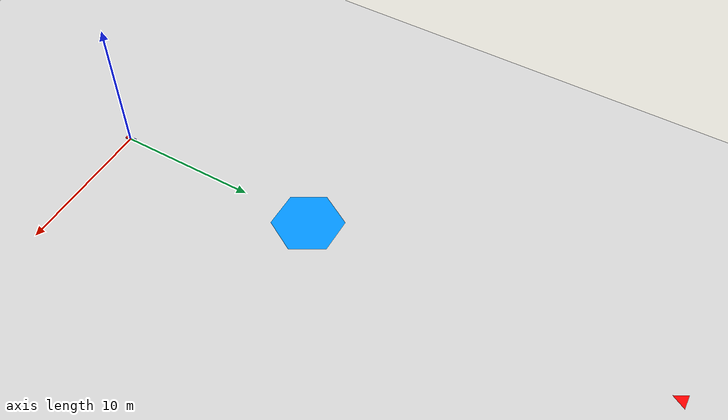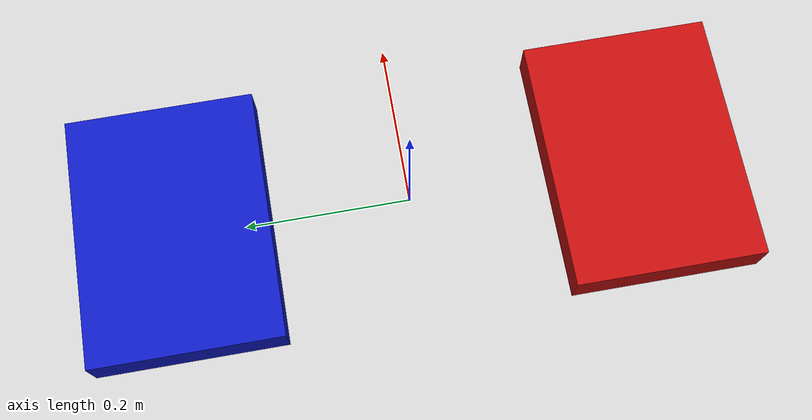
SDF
<?xml version="1.0" encoding="UTF-8"?>
<sdf version="1.9">
  <world name="default">

    <!-- Physics -->
    <physics type="ode">
      <max_step_size>0.004</max_step_size>
      <real_time_factor>1.0</real_time_factor>
      <real_time_update_rate>250</real_time_update_rate>
    </physics>

    <!-- Environment -->
    <gravity>0 0 -9.8</gravity>
    <magnetic_field>6e-06 2.3e-05 -4.2e-05</magnetic_field>
    <atmosphere type="adiabatic"/>

    <!-- Scene / lighting env -->
    <scene>
      <grid>false</grid>
      <ambient>0.4 0.4 0.4 1</ambient>
      <background>0.7 0.7 0.7 1</background>
      <shadows>true</shadows>
    </scene>

    <!-- Ground plane -->
    <model name="ground_plane">
      <static>true</static>
      <link name="link">
        <collision name="collision">
          <geometry>
            <plane>
              <normal>0 0 1</normal>
              <size>1 1</size>
            </plane>
          </geometry>
          <surface>
            <friction>
              <ode/>
            </friction>
            <bounce/>
            <contact/>
          </surface>
        </collision>

        <visual name="visual">
          <geometry>
            <plane>
              <normal>0 0 1</normal>
              <size>500 500</size>
            </plane>
          </geometry>
          <material>
            <ambient>0.8 0.8 0.8 1</ambient>
            <diffuse>0.8 0.8 0.8 1</diffuse>
            <specular>0.8 0.8 0.8 1</specular>
          </material>
        </visual>

        <pose>0 0 0 0 0 0</pose>

        <inertial>
          <pose>0 0 0 0 0 0</pose>
          <mass>1</mass>
          <inertia>
            <ixx>1</ixx>
            <ixy>0</ixy>
            <ixz>0</ixz>
            <iyy>1</iyy>
            <iyz>0</iyz>
            <izz>1</izz>
          </inertia>
        </inertial>

        <enable_wind>false</enable_wind>
      </link>

      <pose>0 0 0 0 0 0</pose>
      <self_collide>false</self_collide>
    </model>

    <!-- 🔷 Kalıcı mavi altıgen (STL + klasik malzeme, kendi model.sdf'in) -->
    <include>
      <uri>model://blue_hexagon</uri>
      <name>blue_hexagon</name>
      <pose>0 15 0.003 0 0 0</pose>
    </include>

    <!-- 🔺 Kalıcı kırmızı üçgen -->
    <include>
      <uri>model://red_triangle</uri>
      <name>red_triangle</name>
      <!-- W1: same 0.05 -> 0.003 lift as blue_hexagon above. -->
      <pose>0 40 0.003 0 0 0</pose>
    </include>

    <model name="payload_red">
      <pose>0 -0.28 0.025 0 0 0</pose>
      <link name="link">
        <inertial>
          <mass>0.15</mass>
          <inertia>
            <ixx>0.00069</ixx><iyy>0.00116</iyy><izz>0.00176</izz>
            <ixy>0</ixy><ixz>0</ixz><iyz>0</iyz>
          </inertia>
        </inertial>
        <collision name="collision">
          <geometry><box><size>0.30 0.225 0.05</size></box></geometry>
        </collision>
        <visual name="visual">
          <geometry><box><size>0.30 0.225 0.05</size></box></geometry>
          <material>
            <ambient>0.75 0.05 0.05 1</ambient>
            <diffuse>0.75 0.05 0.05 1</diffuse>
            <specular>0.2 0.2 0.2 1</specular>
          </material>
        </visual>
      </link>
    </model>

    <model name="payload_blue">
      <pose>0 0.28 0.025 0 0 0</pose>
      <link name="link">
        <inertial>
          <mass>0.15</mass>
          <inertia>
            <ixx>0.00069</ixx><iyy>0.00116</iyy><izz>0.00176</izz>
            <ixy>0</ixy><ixz>0</ixz><iyz>0</iyz>
          </inertia>
        </inertial>
        <collision name="collision">
          <geometry><box><size>0.30 0.225 0.05</size></box></geometry>
        </collision>
        <visual name="visual">
          <geometry><box><size>0.30 0.225 0.05</size></box></geometry>
          <material>
            <ambient>0.05 0.10 0.75 1</ambient>
            <diffuse>0.05 0.10 0.75 1</diffuse>
            <specular>0.2 0.2 0.2 1</specular>
          </material>
        </visual>
      </link>
    </model>

    <!-- Sun -->
    <light name="sunUTC" type="directional">
      <pose>0 0 500 0 0 0</pose>
      <cast_shadows>true</cast_shadows>
      <intensity>1</intensity>
      <direction>0.001 0.625 -0.78</direction>
      <diffuse>0.904 0.904 0.904 1</diffuse>
      <specular>0.271 0.271 0.271 1</specular>
      <attenuation>
        <range>2000</range>
        <linear>0</linear>
        <constant>1</constant>
        <quadratic>0</quadratic>
      </attenuation>
      <spot>
        <inner_angle>0</inner_angle>
        <outer_angle>0</outer_angle>
        <falloff>0</falloff>
      </spot>
    </light>

    <!-- Geo coords (PX4 default) -->
    <spherical_coordinates>
      <surface_model>EARTH_WGS84</surface_model>
      <world_frame_orientation>ENU</world_frame_orientation>
      <latitude_deg>47.397971057728974</latitude_deg>
      <longitude_deg>8.546163739800146</longitude_deg>
      <elevation>0</elevation>
    </spherical_coordinates>

  </world>
</sdf>

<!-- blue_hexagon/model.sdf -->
<sdf version="1.9">
  <model name="blue_hexagon">
    <static>true</static>
    <pose>-2 0 0.05 0 0 0</pose>
    <link name="link">
      <visual name="visual">
        <geometry>
          <mesh>
            <uri>../../materials/meshes/hexagon_blue_1m_2cm.stl</uri>
            <scale>5 5 1</scale>
          </mesh>
        </geometry>
        <material>
          <ambient>0.04 0.10 0.28 1</ambient>
          <diffuse>0.00 0.55 1.00 1</diffuse>   <!-- canlı “elektrik mavisi” -->
          <specular>0.90 0.90 0.90 1</specular> <!-- parlak yansıma -->
          <emissive>0.000 0.004 0.541 1</emissive>
          <double_sided>true</double_sided>
        </material>
      </visual>

      <collision name="collision">
        <pose>0 0 -0.047 0 0 0</pose>
        <geometry>
          <box><size>5 4.33 0.1</size></box>
        </geometry>
      </collision>
    </link>
  </model>
</sdf>

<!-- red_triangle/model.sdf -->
<sdf version="1.9">
  <model name="red_triangle">
    <static>true</static>
    <pose>2 0 0.05 0 0 0</pose> <!-- 2 m sağda -->
    <link name="link">
      <visual name="visual">
        <geometry>
          <mesh>
            <uri>../../materials/meshes/triangle_red_1m_2cm.stl</uri>
          </mesh>
        </geometry>
        <material>
          <ambient>1 0 0 1</ambient>
          <diffuse>1 0 0 1</diffuse>
          <specular>0.1 0.1 0.1 1</specular>
          <double_sided>true</double_sided>
        </material>
      </visual>

      <!-- Thin above, thick below - see blue_hexagon for the tunnelling
           measurement that forced this. Top at world z=0.006, bulk
           underground. -->
      <collision name="collision">
        <pose>0 0.144 -0.047 0 0 0</pose>
        <geometry>
          <box><size>1 0.866 0.1</size></box>
        </geometry>
      </collision>
    </link>
  </model>
</sdf>
